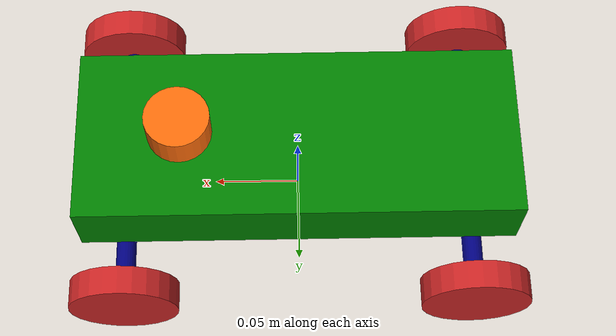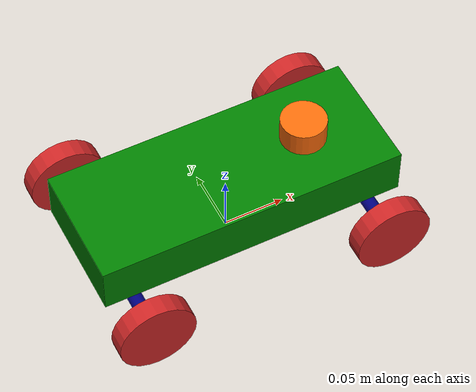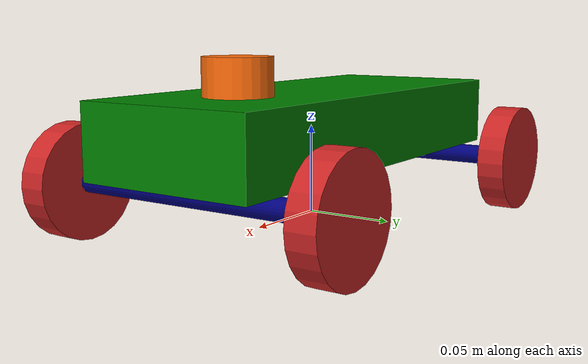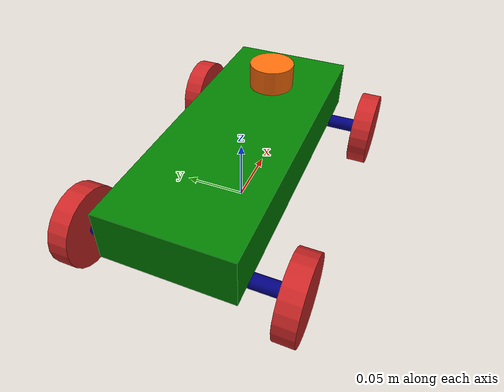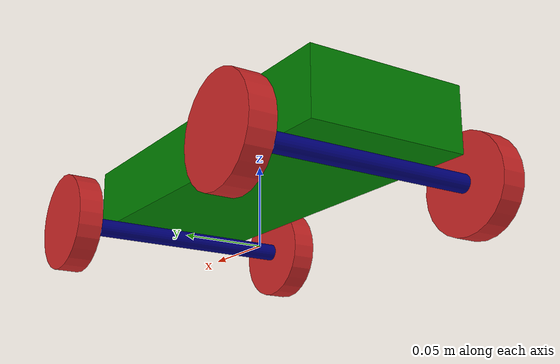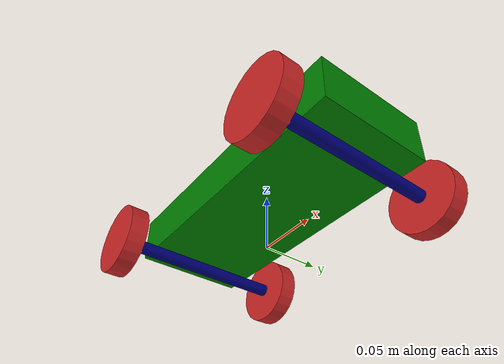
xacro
<?xml version="1.0"?>
<robot xmlns:xacro="http://www.ros.org/wiki/xacro" name="ackermann">
  <xacro:include filename="myacks.xacro"/>
  <xacro:include filename="sensors.xacro"/>
  <xacro:include filename="gazebo_ros2_control.xacro"/>

</robot>

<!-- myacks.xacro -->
<robot xmlns:xacro="http://www.ros.org/wiki/xacro" name="ackermann_robot">

    <xacro:include filename="inertia_macro.xacro"/>

    <!-- chassis -->
    <xacro:property name="base_length" value='0.25'/>
    <xacro:property name="base_width" value= '${base_length/2.5}'/>
    <xacro:property name="base_height" value='${base_width/2.5}'/>

    <!-- wheels  -->
    <xacro:property name="wheel_radius" value='${base_length/8.0}'/>
    <xacro:property name="wheel_length" value='${wheel_radius/2.0}'/>

    <!-- wheeltracker and wheelbase -->
    <xacro:property name="wheel_base" value='${base_length*0.8}'/>
    <xacro:property name="tracker_radius" value='${base_height/7.0}'/>
    <xacro:property name="tracker_length" value='${base_width +(1.5*wheel_radius)}'/>

    <xacro:property name="sphere_radius" value='${wheel_radius/2.0}'/>
    <xacro:property name="correction" value='3.0'/>

    <!-- colors  -->
    <material name='green'><color rgba="0.0 0.5 0.0 1.0"/></material>
    <material name='blue'><color rgba="0.0 0.0 0.5 1.0"/></material>

    <!-- base link -->
    <link name="base_footprint"></link>
    <link name="base_link">
        <visual>
            <geometry>
                <box size="${base_length} ${base_width} ${base_height} "/>
            </geometry>
            <origin xyz="0.0 0.0 ${base_height/2.0}" rpy="0.0 0.0 0.0"/>
            <material name="green"/>
        </visual>
        <xacro:box_inertia m='0.1' l='${correction * base_length}' w='${correction * base_width}' h='${correction * base_height}' xyz="0.0 0.0 0.0" rpy="0.0 0.0 0.0"/>
        <collision>
            <geometry>
                <box size="${base_length} ${base_width} ${base_height} "/>
            </geometry>
            <origin xyz="0.0 0.0 ${base_height/2.0}" rpy="0.0 0.0 0.0"/>
        </collision>
    </link>
    <joint name="base_foot_joint" type="fixed">
        <parent link="base_footprint"/>
        <child link="base_link"/>
        <origin xyz="0.0 0.0 ${wheel_radius} " rpy="0 0.0 0.0"/>
    </joint>

    <!-- front tracker -->
    <link name="front_tracker">
        <visual>
            <geometry>
                <cylinder radius="${tracker_radius}" length="${tracker_length}"/>
            </geometry>
            <origin xyz="0.0 0.0 0.0" rpy="0.0 0.0 0.0"/>
            <material name="blue"/>
        </visual>
        <xacro:cylinder_inertia m='0.01' r='${correction * wheel_radius}' h='${correction * wheel_length}' xyz="0.0 0.0 0.0" rpy="0.0 0.0 0.0" />
        <collision>
            <geometry>
                <cylinder radius="${tracker_radius}" length="${wheel_length}"/>
            </geometry>
            <origin xyz="0.0 0.0 0.0" rpy="0.0 0.0 0.0"/>
        </collision>
    </link>
    <joint name="front_tracker_joint" type="revolute">
        <parent link="base_link"/>
        <child link="front_tracker"/>
        <limit lower="-0.4" upper="0.4" effort="100" velocity="100"/>
        <origin xyz="${wheel_base/2.0} 0.0 -${tracker_radius}" rpy="-${pi/2.0} 0.0 0.0"/>
        <axis xyz="0.0 -1 0"/>
    </joint>

    <!-- rear tracker -->
    <link name="rear_tracker">
        <visual>
            <geometry>
                <cylinder radius="${tracker_radius}" length="${tracker_length}"/>
            </geometry>
            <origin xyz="0.0 0.0 0.0" rpy="0.0 0.0 0.0"/>
            <material name="blue"/>
        </visual>
        <xacro:cylinder_inertia m='0.01' r='${correction * wheel_radius}' h='${correction * wheel_length}' xyz="0.0 0.0 0.0" rpy="0.0 0.0 0.0" />
        <collision>
            <geometry>
                <cylinder radius="${tracker_radius}" length="${wheel_length}"/>
            </geometry>
            <origin xyz="0.0 0.0 0.0" rpy="0.0 0.0 0.0"/>
        </collision>
    </link>
    <joint name="rear_tracker_joint" type="continuous">
        <parent link="base_link"/>
        <child link="rear_tracker"/>
        <axis xyz="0 0 1"/>
        <origin xyz="-${wheel_base/2.0} 0.0 -${tracker_radius}" rpy="-${pi/2.0} 0.0 0.0"/>
    </joint>

    <!-- rear right wheel -->
    <link name="rear_right_wheel_link">
        <visual>
            <geometry>
                <cylinder radius="${wheel_radius}" length="${wheel_length}"/>
            </geometry>
            <origin xyz="0.0 0.0 0.0" rpy="0.0 0.0 0.0"/>
        </visual>
        <xacro:cylinder_inertia m='0.01' r='${correction * wheel_radius}' h='${correction * wheel_length}' xyz="0.0 0.0 0.0" rpy="0.0 0.0 0.0" />
        <collision>
            <geometry>
                <cylinder radius="${wheel_radius}" length="${wheel_length}"/>
            </geometry>
            <origin xyz="0.0 0.0 0.0" rpy="0.0 0.0 0.0"/>
        </collision>
    </link>
    <joint name="rear_right_wheel_joint" type="fixed">
        <parent link="rear_tracker"/>
        <child link="rear_right_wheel_link"/>
        <origin xyz="0.0 0.0 -${tracker_length/2.0 + wheel_length/2.0}" rpy="0.0 0.0 0.0"/>
    </joint>

    <!-- rear left wheel -->
    <link name="rear_left_wheel_link">
        <visual>
            <geometry>
                <cylinder radius="${wheel_radius}" length="${wheel_length}"/>
            </geometry>
            <origin xyz="0.0 0.0 0.0" rpy="0.0 0.0 0.0"/>
        </visual>
        <xacro:cylinder_inertia m='0.01' r='${correction * wheel_radius}' h='${correction * wheel_length}' xyz="0.0 0.0 0.0" rpy="0.0 0.0 0.0" />
        <collision>
            <geometry>
                <cylinder radius="${wheel_radius}" length="${wheel_length}"/>
            </geometry>
            <origin xyz="0.0 0.0 0.0" rpy="0.0 0.0 0.0"/>
        </collision>
    </link>
    <joint name="rear_left_wheel_joint" type="fixed">
        <parent link="rear_tracker"/>
        <child link="rear_left_wheel_link"/>
        <origin xyz="0.0 0.0 ${tracker_length/2.0 + wheel_length/2.0}" rpy="0.0 0.0 0.0"/>
    </joint>

    <!-- front left steer -->
    <link name="front_left_wheel_link">
        <visual>
            <geometry>
                <cylinder radius="${wheel_radius}" length="${wheel_length}"/>
            </geometry>
            <origin xyz="0.0 0.0 0.0" rpy="0.0 0.0 0.0"/>
        </visual>
        <xacro:cylinder_inertia m='0.01' r='${correction * wheel_radius}' h='${correction * wheel_length}' xyz="0.0 0.0 0.0" rpy="0.0 0.0 0.0" />
        <collision>
            <geometry>
                <cylinder radius="${wheel_radius}" length="${wheel_length}"/>
            </geometry>
        </collision>
    </link>
    <joint name="front_left_wheel_joint" type="continuous">
        <parent link="front_tracker"/>
        <child link="front_left_wheel_link"/>
        <origin xyz="0.0 0.0 -${tracker_length/2.0 + wheel_length/2.0}" rpy="0.0 0.0 0.0"/>
        <axis xyz="0 0 1"/>
        <mimic joint="rear_tracker_joint" multiplier="1.0" offet="0.0"/>
    </joint>

    <!-- front right wheel -->
    <link name="front_right_wheel_link">
        <visual>
            <geometry>
                <cylinder radius="${wheel_radius}" length="${wheel_length}"/>
            </geometry>
            <origin xyz="0.0 0.0 0.0" rpy="0.0 0.0 0.0"/>
        </visual>
        <xacro:cylinder_inertia m='0.01' r='${correction * wheel_radius}' h='${correction * wheel_length}' xyz="0.0 0.0 0.0" rpy="0.0 0.0 0.0" />
        <collision>
            <geometry>
                <cylinder radius="${wheel_radius}" length="${wheel_length}"/>
            </geometry>
            <origin xyz="0.0 0.0 0.0" rpy="0.0 0.0 0.0"/>
        </collision>
    </link>
    <joint name="front_right_wheel_joint" type="continuous">
        <parent link="front_tracker"/>
        <child link="front_right_wheel_link"/>
        <origin xyz="0.0 0.0 ${tracker_length/2.0 + wheel_length/2.0}" rpy="0.0 0.0 0.0"/>
        <axis xyz="0 0 1"/>
        <mimic joint="rear_tracker_joint" multiplier="1.0" offet="0.0"/>
    </joint>

</robot>

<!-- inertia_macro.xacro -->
<robot xmlns:xacro="http://www.ros.org/wiki/xacro" name="macros">

    <!-- adding correction propeties -->
    <xacro:property name="correction" value="2.0"/>

    <!-- box intertia -->
    <xacro:macro name='box_inertia' params="m l w h xyz rpy">
        <inertial>
            <origin xyz='${xyz}' rpy='${rpy}'/>
            <mass value="${m}"/>
            <inertia ixx="${(m/12.0) * (h*h + l*l)}" ixy="0.0" ixz="0.0" iyy="${(m/12)*(w*w + h*h)}" iyz="0.0" izz="${(m/12)*(w*w + l*l)}"/>
        </inertial>
    </xacro:macro>

    <!-- cylinder inertia  -->
    <xacro:macro name='cylinder_inertia' params='m r h xyz rpy'>
        <inertial>
            <origin xyz="${xyz}" rpy="${rpy}"/>
            <mass value='${m}'/>
            <inertia ixx="${(m/12) * ((3*r*r)+(h*h))}" ixy="0.0" ixz="0.0" iyy="${(m/12) * ((3*r*r)+(h*h))}" iyz="0.0" izz="${(m/2)*r*r}"/>
        </inertial>
    </xacro:macro>

    <!-- for sphere -->
    <xacro:macro name='sphere_inertia' params='m r xyz rpy'>
        <inertial>
            <origin xyz="${xyz}" rpy="${rpy}"/>
            <mass value="${m}"/>
            <inertia ixx="${2*m*r*r/5}" ixy="0.0" ixz="0.0" iyy="${2*m*r*r/5}" iyz="0.0" izz="${2*m*r*r/5}"/>
        </inertial>
    </xacro:macro>

</robot>

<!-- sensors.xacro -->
<robot xmlns:xacro="http://www.ros.org/wiki/xacro">

  <xacro:property name="sensor_radius" value="${wheel_radius/1.7}"/>
  <xacro:property name="sensor_height" value="${wheel_length*1.3}"/>
  <xacro:property name="sensor_radius" value="${wheel_radius/1.7}"/>

  <material name='scan'><color rgba="${255/255} ${108/255} ${10/255} 1.0"/></material>

    <link name="base_scan">
        <visual>
          <origin xyz="0 0 0" rpy="0 0 0"/>
          <material name="scan"/>
          <geometry>
            <cylinder radius="${sensor_radius}" length="${sensor_height}"/>
          </geometry>
        </visual>
        <xacro:cylinder_inertia m='0.01' r='${correction * sensor_radius}' h='${correction * sensor_height}' xyz="0.0 0.0 0.0" rpy="0.0 0.0 0.0" />
        <collision>
          <origin xyz="0 0 0" rpy="0 0 0"/>
          <geometry>
            <cylinder radius="${sensor_radius}" length="${sensor_height}"/>
          </geometry>
        </collision>
      </link>

      <joint name="base_sensor_joint" type="fixed">
        <origin xyz="${wheel_base/3.0} 0.0 ${base_height + (sensor_height/2.0)}" rpy="0.0 0.0 0.0"/>
        <parent link="base_link"/>
        <child link="base_scan"/>
      </joint>

      <!-- lidar sensor -->
      <gazebo reference="base_scan">
        <material>Gazebo/Orange</material>

        <sensor name="laser" type="ray">
            <pose> 0 0 0 0 0 0 </pose>
            <visualize>true</visualize>
            <update_rate>10</update_rate>
            <ray>
                <scan>
                    <horizontal>
                        <samples>360</samples>
                        <min_angle>-3.14</min_angle>
                        <max_angle>3.14</max_angle>
                    </horizontal>
                </scan>
                <range>
                    <min>0.2</min>
                    <max>8</max>
                </range>
            </ray>
            <plugin name="laser_controller" filename="libgazebo_ros_ray_sensor.so">
                <ros>
                    <argument>~/out:=scan</argument>
                </ros>
                <output_type>sensor_msgs/LaserScan</output_type>
                <frame_name>base_scan</frame_name>
            </plugin>
        </sensor>
    </gazebo>

</robot>
